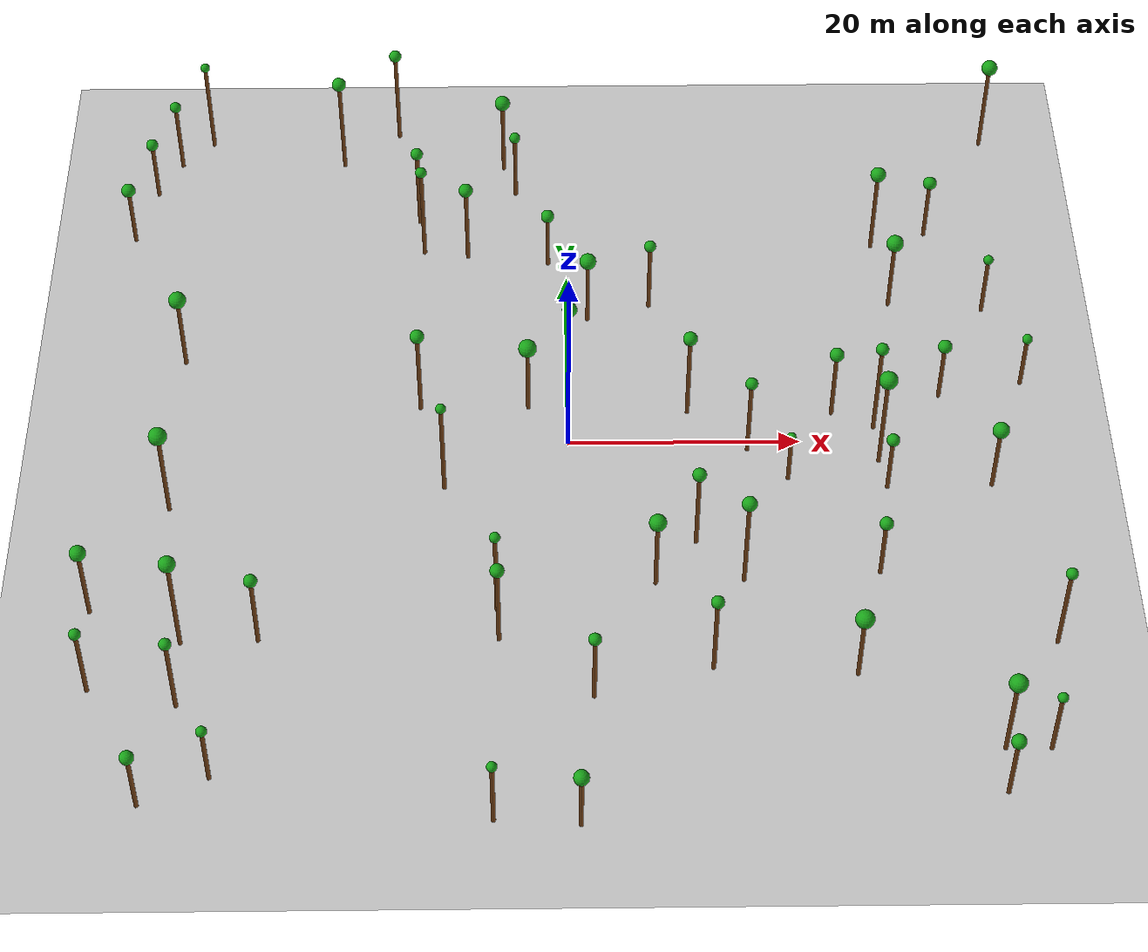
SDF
<sdf version="1.6">
 <world name="forest_world">
  <include><uri>model://sun</uri></include>
  <include><uri>model://ground_plane</uri></include>
  <model name="tree_229">
   <static>true</static>
   <link name="tree_link">
    <collision name="trunk_collision">
     <pose>18.78 -4.20 2.57 0 0 0</pose>
     <geometry><cylinder><radius>0.18</radius><length>5.14</length></cylinder></geometry>
    </collision>
    <visual name="trunk_visual">
     <pose>18.78 -4.20 2.57 0 0 0</pose>
     <geometry><cylinder><radius>0.18</radius><length>5.14</length></cylinder></geometry>
     <material><ambient>0.35 0.20 0.05 1</ambient><diffuse>0.45 0.25 0.08 1</diffuse></material>
    </visual>
    <visual name="leaf_visual">
     <pose>18.78 -4.20 5.35 0 0 0</pose>
     <geometry><sphere><radius>0.41</radius></sphere></geometry>
     <material><ambient>0.05 0.45 0.05 1</ambient><diffuse>0.10 0.65 0.10 1</diffuse></material>
    </visual>
   </link>
  </model>
  <model name="tree_230">
   <static>true</static>
   <link name="tree_link">
    <collision name="trunk_collision">
     <pose>11.48 -24.26 4.16 0 0 0</pose>
     <geometry><cylinder><radius>0.18</radius><length>8.33</length></cylinder></geometry>
    </collision>
    <visual name="trunk_visual">
     <pose>11.48 -24.26 4.16 0 0 0</pose>
     <geometry><cylinder><radius>0.18</radius><length>8.33</length></cylinder></geometry>
     <material><ambient>0.35 0.20 0.05 1</ambient><diffuse>0.45 0.25 0.08 1</diffuse></material>
    </visual>
    <visual name="leaf_visual">
     <pose>11.48 -24.26 8.60 0 0 0</pose>
     <geometry><sphere><radius>0.55</radius></sphere></geometry>
     <material><ambient>0.05 0.45 0.05 1</ambient><diffuse>0.10 0.65 0.10 1</diffuse></material>
    </visual>
   </link>
  </model>
  <model name="tree_231">
   <static>true</static>
   <link name="tree_link">
    <collision name="trunk_collision">
     <pose>-9.00 22.93 4.07 0 0 0</pose>
     <geometry><cylinder><radius>0.18</radius><length>8.13</length></cylinder></geometry>
    </collision>
    <visual name="trunk_visual">
     <pose>-9.00 22.93 4.07 0 0 0</pose>
     <geometry><cylinder><radius>0.18</radius><length>8.13</length></cylinder></geometry>
     <material><ambient>0.35 0.20 0.05 1</ambient><diffuse>0.45 0.25 0.08 1</diffuse></material>
    </visual>
    <visual name="leaf_visual">
     <pose>-9.00 22.93 8.45 0 0 0</pose>
     <geometry><sphere><radius>0.63</radius></sphere></geometry>
     <material><ambient>0.05 0.45 0.05 1</ambient><diffuse>0.10 0.65 0.10 1</diffuse></material>
    </visual>
   </link>
  </model>
  <model name="tree_232">
   <static>true</static>
   <link name="tree_link">
    <collision name="trunk_collision">
     <pose>-34.02 -37.08 3.11 0 0 0</pose>
     <geometry><cylinder><radius>0.18</radius><length>6.22</length></cylinder></geometry>
    </collision>
    <visual name="trunk_visual">
     <pose>-34.02 -37.08 3.11 0 0 0</pose>
     <geometry><cylinder><radius>0.18</radius><length>6.22</length></cylinder></geometry>
     <material><ambient>0.35 0.20 0.05 1</ambient><diffuse>0.45 0.25 0.08 1</diffuse></material>
    </visual>
    <visual name="leaf_visual">
     <pose>-34.02 -37.08 6.51 0 0 0</pose>
     <geometry><sphere><radius>0.58</radius></sphere></geometry>
     <material><ambient>0.05 0.45 0.05 1</ambient><diffuse>0.10 0.65 0.10 1</diffuse></material>
    </visual>
   </link>
  </model>
  <model name="tree_233">
   <static>true</static>
   <link name="tree_link">
    <collision name="trunk_collision">
     <pose>-25.56 -21.14 3.79 0 0 0</pose>
     <geometry><cylinder><radius>0.18</radius><length>7.57</length></cylinder></geometry>
    </collision>
    <visual name="trunk_visual">
     <pose>-25.56 -21.14 3.79 0 0 0</pose>
     <geometry><cylinder><radius>0.18</radius><length>7.57</length></cylinder></geometry>
     <material><ambient>0.35 0.20 0.05 1</ambient><diffuse>0.45 0.25 0.08 1</diffuse></material>
    </visual>
    <visual name="leaf_visual">
     <pose>-25.56 -21.14 7.85 0 0 0</pose>
     <geometry><sphere><radius>0.56</radius></sphere></geometry>
     <material><ambient>0.05 0.45 0.05 1</ambient><diffuse>0.10 0.65 0.10 1</diffuse></material>
    </visual>
   </link>
  </model>
  <model name="tree_234">
   <static>true</static>
   <link name="tree_link">
    <collision name="trunk_collision">
     <pose>-33.50 38.41 4.76 0 0 0</pose>
     <geometry><cylinder><radius>0.18</radius><length>9.52</length></cylinder></geometry>
    </collision>
    <visual name="trunk_visual">
     <pose>-33.50 38.41 4.76 0 0 0</pose>
     <geometry><cylinder><radius>0.18</radius><length>9.52</length></cylinder></geometry>
     <material><ambient>0.35 0.20 0.05 1</ambient><diffuse>0.45 0.25 0.08 1</diffuse></material>
    </visual>
    <visual name="leaf_visual">
     <pose>-33.50 38.41 9.73 0 0 0</pose>
     <geometry><sphere><radius>0.42</radius></sphere></geometry>
     <material><ambient>0.05 0.45 0.05 1</ambient><diffuse>0.10 0.65 0.10 1</diffuse></material>
    </visual>
   </link>
  </model>
  <model name="tree_235">
   <static>true</static>
   <link name="tree_link">
    <collision name="trunk_collision">
     <pose>-20.85 35.39 4.95 0 0 0</pose>
     <geometry><cylinder><radius>0.18</radius><length>9.90</length></cylinder></geometry>
    </collision>
    <visual name="trunk_visual">
     <pose>-20.85 35.39 4.95 0 0 0</pose>
     <geometry><cylinder><radius>0.18</radius><length>9.90</length></cylinder></geometry>
     <material><ambient>0.35 0.20 0.05 1</ambient><diffuse>0.45 0.25 0.08 1</diffuse></material>
    </visual>
    <visual name="leaf_visual">
     <pose>-20.85 35.39 10.21 0 0 0</pose>
     <geometry><sphere><radius>0.64</radius></sphere></geometry>
     <material><ambient>0.05 0.45 0.05 1</ambient><diffuse>0.10 0.65 0.10 1</diffuse></material>
    </visual>
   </link>
  </model>
  <model name="tree_236">
   <static>true</static>
   <link name="tree_link">
    <collision name="trunk_collision">
     <pose>-12.99 23.54 4.94 0 0 0</pose>
     <geometry><cylinder><radius>0.18</radius><length>9.88</length></cylinder></geometry>
    </collision>
    <visual name="trunk_visual">
     <pose>-12.99 23.54 4.94 0 0 0</pose>
     <geometry><cylinder><radius>0.18</radius><length>9.88</length></cylinder></geometry>
     <material><ambient>0.35 0.20 0.05 1</ambient><diffuse>0.45 0.25 0.08 1</diffuse></material>
    </visual>
    <visual name="leaf_visual">
     <pose>-12.99 23.54 10.13 0 0 0</pose>
     <geometry><sphere><radius>0.51</radius></sphere></geometry>
     <material><ambient>0.05 0.45 0.05 1</ambient><diffuse>0.10 0.65 0.10 1</diffuse></material>
    </visual>
   </link>
  </model>
  <model name="tree_237">
   <static>true</static>
   <link name="tree_link">
    <collision name="trunk_collision">
     <pose>-33.92 9.90 3.81 0 0 0</pose>
     <geometry><cylinder><radius>0.18</radius><length>7.62</length></cylinder></geometry>
    </collision>
    <visual name="trunk_visual">
     <pose>-33.92 9.90 3.81 0 0 0</pose>
     <geometry><cylinder><radius>0.18</radius><length>7.62</length></cylinder></geometry>
     <material><ambient>0.35 0.20 0.05 1</ambient><diffuse>0.45 0.25 0.08 1</diffuse></material>
    </visual>
    <visual name="leaf_visual">
     <pose>-33.92 9.90 8.00 0 0 0</pose>
     <geometry><sphere><radius>0.76</radius></sphere></geometry>
     <material><ambient>0.05 0.45 0.05 1</ambient><diffuse>0.10 0.65 0.10 1</diffuse></material>
    </visual>
   </link>
  </model>
  <model name="tree_238">
   <static>true</static>
   <link name="tree_link">
    <collision name="trunk_collision">
     <pose>39.75 37.72 4.64 0 0 0</pose>
     <geometry><cylinder><radius>0.18</radius><length>9.28</length></cylinder></geometry>
    </collision>
    <visual name="trunk_visual">
     <pose>39.75 37.72 4.64 0 0 0</pose>
     <geometry><cylinder><radius>0.18</radius><length>9.28</length></cylinder></geometry>
     <material><ambient>0.35 0.20 0.05 1</ambient><diffuse>0.45 0.25 0.08 1</diffuse></material>
    </visual>
    <visual name="leaf_visual">
     <pose>39.75 37.72 9.64 0 0 0</pose>
     <geometry><sphere><radius>0.72</radius></sphere></geometry>
     <material><ambient>0.05 0.45 0.05 1</ambient><diffuse>0.10 0.65 0.10 1</diffuse></material>
    </visual>
   </link>
  </model>
  <model name="tree_239">
   <static>true</static>
   <link name="tree_link">
    <collision name="trunk_collision">
     <pose>-39.03 -25.99 3.59 0 0 0</pose>
     <geometry><cylinder><radius>0.18</radius><length>7.18</length></cylinder></geometry>
    </collision>
    <visual name="trunk_visual">
     <pose>-39.03 -25.99 3.59 0 0 0</pose>
     <geometry><cylinder><radius>0.18</radius><length>7.18</length></cylinder></geometry>
     <material><ambient>0.35 0.20 0.05 1</ambient><diffuse>0.45 0.25 0.08 1</diffuse></material>
    </visual>
    <visual name="leaf_visual">
     <pose>-39.03 -25.99 7.43 0 0 0</pose>
     <geometry><sphere><radius>0.49</radius></sphere></geometry>
     <material><ambient>0.05 0.45 0.05 1</ambient><diffuse>0.10 0.65 0.10 1</diffuse></material>
    </visual>
   </link>
  </model>
  <model name="tree_240">
   <static>true</static>
   <link name="tree_link">
    <collision name="trunk_collision">
     <pose>-31.91 -21.33 4.98 0 0 0</pose>
     <geometry><cylinder><radius>0.18</radius><length>9.96</length></cylinder></geometry>
    </collision>
    <visual name="trunk_visual">
     <pose>-31.91 -21.33 4.98 0 0 0</pose>
     <geometry><cylinder><radius>0.18</radius><length>9.96</length></cylinder></geometry>
     <material><ambient>0.35 0.20 0.05 1</ambient><diffuse>0.45 0.25 0.08 1</diffuse></material>
    </visual>
    <visual name="leaf_visual">
     <pose>-31.91 -21.33 10.30 0 0 0</pose>
     <geometry><sphere><radius>0.70</radius></sphere></geometry>
     <material><ambient>0.05 0.45 0.05 1</ambient><diffuse>0.10 0.65 0.10 1</diffuse></material>
    </visual>
   </link>
  </model>
  <model name="tree_241">
   <static>true</static>
   <link name="tree_link">
    <collision name="trunk_collision">
     <pose>33.94 -36.53 3.24 0 0 0</pose>
     <geometry><cylinder><radius>0.18</radius><length>6.49</length></cylinder></geometry>
    </collision>
    <visual name="trunk_visual">
     <pose>33.94 -36.53 3.24 0 0 0</pose>
     <geometry><cylinder><radius>0.18</radius><length>6.49</length></cylinder></geometry>
     <material><ambient>0.35 0.20 0.05 1</ambient><diffuse>0.45 0.25 0.08 1</diffuse></material>
    </visual>
    <visual name="leaf_visual">
     <pose>33.94 -36.53 6.79 0 0 0</pose>
     <geometry><sphere><radius>0.61</radius></sphere></geometry>
     <material><ambient>0.05 0.45 0.05 1</ambient><diffuse>0.10 0.65 0.10 1</diffuse></material>
    </visual>
   </link>
  </model>
  <model name="tree_242">
   <static>true</static>
   <link name="tree_link">
    <collision name="trunk_collision">
     <pose>10.60 -11.14 4.19 0 0 0</pose>
     <geometry><cylinder><radius>0.18</radius><length>8.39</length></cylinder></geometry>
    </collision>
    <visual name="trunk_visual">
     <pose>10.60 -11.14 4.19 0 0 0</pose>
     <geometry><cylinder><radius>0.18</radius><length>8.39</length></cylinder></geometry>
     <material><ambient>0.35 0.20 0.05 1</ambient><diffuse>0.45 0.25 0.08 1</diffuse></material>
    </visual>
    <visual name="leaf_visual">
     <pose>10.60 -11.14 8.68 0 0 0</pose>
     <geometry><sphere><radius>0.59</radius></sphere></geometry>
     <material><ambient>0.05 0.45 0.05 1</ambient><diffuse>0.10 0.65 0.10 1</diffuse></material>
    </visual>
   </link>
  </model>
  <model name="tree_243">
   <static>true</static>
   <link name="tree_link">
    <collision name="trunk_collision">
     <pose>28.20 23.94 4.38 0 0 0</pose>
     <geometry><cylinder><radius>0.18</radius><length>8.75</length></cylinder></geometry>
    </collision>
    <visual name="trunk_visual">
     <pose>28.20 23.94 4.38 0 0 0</pose>
     <geometry><cylinder><radius>0.18</radius><length>8.75</length></cylinder></geometry>
     <material><ambient>0.35 0.20 0.05 1</ambient><diffuse>0.45 0.25 0.08 1</diffuse></material>
    </visual>
    <visual name="leaf_visual">
     <pose>28.20 23.94 9.09 0 0 0</pose>
     <geometry><sphere><radius>0.69</radius></sphere></geometry>
     <material><ambient>0.05 0.45 0.05 1</ambient><diffuse>0.10 0.65 0.10 1</diffuse></material>
    </visual>
   </link>
  </model>
  <model name="tree_244">
   <static>true</static>
   <link name="tree_link">
    <collision name="trunk_collision">
     <pose>15.45 -0.89 4.09 0 0 0</pose>
     <geometry><cylinder><radius>0.18</radius><length>8.17</length></cylinder></geometry>
    </collision>
    <visual name="trunk_visual">
     <pose>15.45 -0.89 4.09 0 0 0</pose>
     <geometry><cylinder><radius>0.18</radius><length>8.17</length></cylinder></geometry>
     <material><ambient>0.35 0.20 0.05 1</ambient><diffuse>0.45 0.25 0.08 1</diffuse></material>
    </visual>
    <visual name="leaf_visual">
     <pose>15.45 -0.89 8.44 0 0 0</pose>
     <geometry><sphere><radius>0.54</radius></sphere></geometry>
     <material><ambient>0.05 0.45 0.05 1</ambient><diffuse>0.10 0.65 0.10 1</diffuse></material>
    </visual>
   </link>
  </model>
  <model name="tree_245">
   <static>true</static>
   <link name="tree_link">
    <collision name="trunk_collision">
     <pose>-39.82 25.50 3.01 0 0 0</pose>
     <geometry><cylinder><radius>0.18</radius><length>6.03</length></cylinder></geometry>
    </collision>
    <visual name="trunk_visual">
     <pose>-39.82 25.50 3.01 0 0 0</pose>
     <geometry><cylinder><radius>0.18</radius><length>6.03</length></cylinder></geometry>
     <material><ambient>0.35 0.20 0.05 1</ambient><diffuse>0.45 0.25 0.08 1</diffuse></material>
    </visual>
    <visual name="leaf_visual">
     <pose>-39.82 25.50 6.34 0 0 0</pose>
     <geometry><sphere><radius>0.63</radius></sphere></geometry>
     <material><ambient>0.05 0.45 0.05 1</ambient><diffuse>0.10 0.65 0.10 1</diffuse></material>
    </visual>
   </link>
  </model>
  <model name="tree_246">
   <static>true</static>
   <link name="tree_link">
    <collision name="trunk_collision">
     <pose>34.18 -32.40 4.12 0 0 0</pose>
     <geometry><cylinder><radius>0.18</radius><length>8.24</length></cylinder></geometry>
    </collision>
    <visual name="trunk_visual">
     <pose>34.18 -32.40 4.12 0 0 0</pose>
     <geometry><cylinder><radius>0.18</radius><length>8.24</length></cylinder></geometry>
     <material><ambient>0.35 0.20 0.05 1</ambient><diffuse>0.45 0.25 0.08 1</diffuse></material>
    </visual>
    <visual name="leaf_visual">
     <pose>34.18 -32.40 8.62 0 0 0</pose>
     <geometry><sphere><radius>0.76</radius></sphere></geometry>
     <material><ambient>0.05 0.45 0.05 1</ambient><diffuse>0.10 0.65 0.10 1</diffuse></material>
    </visual>
   </link>
  </model>
  <model name="tree_247">
   <static>true</static>
   <link name="tree_link">
    <collision name="trunk_collision">
     <pose>39.65 -21.96 4.33 0 0 0</pose>
     <geometry><cylinder><radius>0.18</radius><length>8.66</length></cylinder></geometry>
    </collision>
    <visual name="trunk_visual">
     <pose>39.65 -21.96 4.33 0 0 0</pose>
     <geometry><cylinder><radius>0.18</radius><length>8.66</length></cylinder></geometry>
     <material><ambient>0.35 0.20 0.05 1</ambient><diffuse>0.45 0.25 0.08 1</diffuse></material>
    </visual>
    <visual name="leaf_visual">
     <pose>39.65 -21.96 8.91 0 0 0</pose>
     <geometry><sphere><radius>0.50</radius></sphere></geometry>
     <material><ambient>0.05 0.45 0.05 1</ambient><diffuse>0.10 0.65 0.10 1</diffuse></material>
    </visual>
   </link>
  </model>
  <model name="tree_248">
   <static>true</static>
   <link name="tree_link">
    <collision name="trunk_collision">
     <pose>-1.65 22.01 2.88 0 0 0</pose>
     <geometry><cylinder><radius>0.18</radius><length>5.77</length></cylinder></geometry>
    </collision>
    <visual name="trunk_visual">
     <pose>-1.65 22.01 2.88 0 0 0</pose>
     <geometry><cylinder><radius>0.18</radius><length>5.77</length></cylinder></geometry>
     <material><ambient>0.35 0.20 0.05 1</ambient><diffuse>0.45 0.25 0.08 1</diffuse></material>
    </visual>
    <visual name="leaf_visual">
     <pose>-1.65 22.01 6.06 0 0 0</pose>
     <geometry><sphere><radius>0.59</radius></sphere></geometry>
     <material><ambient>0.05 0.45 0.05 1</ambient><diffuse>0.10 0.65 0.10 1</diffuse></material>
    </visual>
   </link>
  </model>
  <model name="tree_249">
   <static>true</static>
   <link name="tree_link">
    <collision name="trunk_collision">
     <pose>-15.77 39.41 4.92 0 0 0</pose>
     <geometry><cylinder><radius>0.18</radius><length>9.84</length></cylinder></geometry>
    </collision>
    <visual name="trunk_visual">
     <pose>-15.77 39.41 4.92 0 0 0</pose>
     <geometry><cylinder><radius>0.18</radius><length>9.84</length></cylinder></geometry>
     <material><ambient>0.35 0.20 0.05 1</ambient><diffuse>0.45 0.25 0.08 1</diffuse></material>
    </visual>
    <visual name="leaf_visual">
     <pose>-15.77 39.41 10.12 0 0 0</pose>
     <geometry><sphere><radius>0.56</radius></sphere></geometry>
     <material><ambient>0.05 0.45 0.05 1</ambient><diffuse>0.10 0.65 0.10 1</diffuse></material>
    </visual>
   </link>
  </model>
  <model name="tree_250">
   <static>true</static>
   <link name="tree_link">
    <collision name="trunk_collision">
     <pose>26.72 -2.30 4.94 0 0 0</pose>
     <geometry><cylinder><radius>0.18</radius><length>9.89</length></cylinder></geometry>
    </collision>
    <visual name="trunk_visual">
     <pose>26.72 -2.30 4.94 0 0 0</pose>
     <geometry><cylinder><radius>0.18</radius><length>9.89</length></cylinder></geometry>
     <material><ambient>0.35 0.20 0.05 1</ambient><diffuse>0.45 0.25 0.08 1</diffuse></material>
    </visual>
    <visual name="leaf_visual">
     <pose>26.72 -2.30 10.28 0 0 0</pose>
     <geometry><sphere><radius>0.79</radius></sphere></geometry>
     <material><ambient>0.05 0.45 0.05 1</ambient><diffuse>0.10 0.65 0.10 1</diffuse></material>
    </visual>
   </link>
  </model>
  <model name="tree_251">
   <static>true</static>
   <link name="tree_link">
    <collision name="trunk_collision">
     <pose>-39.63 -18.04 3.67 0 0 0</pose>
     <geometry><cylinder><radius>0.18</radius><length>7.34</length></cylinder></geometry>
    </collision>
    <visual name="trunk_visual">
     <pose>-39.63 -18.04 3.67 0 0 0</pose>
     <geometry><cylinder><radius>0.18</radius><length>7.34</length></cylinder></geometry>
     <material><ambient>0.35 0.20 0.05 1</ambient><diffuse>0.45 0.25 0.08 1</diffuse></material>
    </visual>
    <visual name="leaf_visual">
     <pose>-39.63 -18.04 7.68 0 0 0</pose>
     <geometry><sphere><radius>0.68</radius></sphere></geometry>
     <material><ambient>0.05 0.45 0.05 1</ambient><diffuse>0.10 0.65 0.10 1</diffuse></material>
    </visual>
   </link>
  </model>
  <model name="tree_252">
   <static>true</static>
   <link name="tree_link">
    <collision name="trunk_collision">
     <pose>23.03 3.26 3.59 0 0 0</pose>
     <geometry><cylinder><radius>0.18</radius><length>7.18</length></cylinder></geometry>
    </collision>
    <visual name="trunk_visual">
     <pose>23.03 3.26 3.59 0 0 0</pose>
     <geometry><cylinder><radius>0.18</radius><length>7.18</length></cylinder></geometry>
     <material><ambient>0.35 0.20 0.05 1</ambient><diffuse>0.45 0.25 0.08 1</diffuse></material>
    </visual>
    <visual name="leaf_visual">
     <pose>23.03 3.26 7.49 0 0 0</pose>
     <geometry><sphere><radius>0.62</radius></sphere></geometry>
     <material><ambient>0.05 0.45 0.05 1</ambient><diffuse>0.10 0.65 0.10 1</diffuse></material>
    </visual>
   </link>
  </model>
  <model name="tree_253">
   <static>true</static>
   <link name="tree_link">
    <collision name="trunk_collision">
     <pose>-5.75 34.83 3.96 0 0 0</pose>
     <geometry><cylinder><radius>0.18</radius><length>7.91</length></cylinder></geometry>
    </collision>
    <visual name="trunk_visual">
     <pose>-5.75 34.83 3.96 0 0 0</pose>
     <geometry><cylinder><radius>0.18</radius><length>7.91</length></cylinder></geometry>
     <material><ambient>0.35 0.20 0.05 1</ambient><diffuse>0.45 0.25 0.08 1</diffuse></material>
    </visual>
    <visual name="leaf_visual">
     <pose>-5.75 34.83 8.26 0 0 0</pose>
     <geometry><sphere><radius>0.70</radius></sphere></geometry>
     <material><ambient>0.05 0.45 0.05 1</ambient><diffuse>0.10 0.65 0.10 1</diffuse></material>
    </visual>
   </link>
  </model>
  <model name="tree_254">
   <static>true</static>
   <link name="tree_link">
    <collision name="trunk_collision">
     <pose>-6.25 -38.71 3.51 0 0 0</pose>
     <geometry><cylinder><radius>0.18</radius><length>7.02</length></cylinder></geometry>
    </collision>
    <visual name="trunk_visual">
     <pose>-6.25 -38.71 3.51 0 0 0</pose>
     <geometry><cylinder><radius>0.18</radius><length>7.02</length></cylinder></geometry>
     <material><ambient>0.35 0.20 0.05 1</ambient><diffuse>0.45 0.25 0.08 1</diffuse></material>
    </visual>
    <visual name="leaf_visual">
     <pose>-6.25 -38.71 7.24 0 0 0</pose>
     <geometry><sphere><radius>0.43</radius></sphere></geometry>
     <material><ambient>0.05 0.45 0.05 1</ambient><diffuse>0.10 0.65 0.10 1</diffuse></material>
    </visual>
   </link>
  </model>
  <model name="tree_255">
   <static>true</static>
   <link name="tree_link">
    <collision name="trunk_collision">
     <pose>-38.20 31.55 3.04 0 0 0</pose>
     <geometry><cylinder><radius>0.18</radius><length>6.08</length></cylinder></geometry>
    </collision>
    <visual name="trunk_visual">
     <pose>-38.20 31.55 3.04 0 0 0</pose>
     <geometry><cylinder><radius>0.18</radius><length>6.08</length></cylinder></geometry>
     <material><ambient>0.35 0.20 0.05 1</ambient><diffuse>0.45 0.25 0.08 1</diffuse></material>
    </visual>
    <visual name="leaf_visual">
     <pose>-38.20 31.55 6.36 0 0 0</pose>
     <geometry><sphere><radius>0.55</radius></sphere></geometry>
     <material><ambient>0.05 0.45 0.05 1</ambient><diffuse>0.10 0.65 0.10 1</diffuse></material>
    </visual>
   </link>
  </model>
  <model name="tree_256">
   <static>true</static>
   <link name="tree_link">
    <collision name="trunk_collision">
     <pose>27.21 -5.27 2.90 0 0 0</pose>
     <geometry><cylinder><radius>0.18</radius><length>5.80</length></cylinder></geometry>
    </collision>
    <visual name="trunk_visual">
     <pose>27.21 -5.27 2.90 0 0 0</pose>
     <geometry><cylinder><radius>0.18</radius><length>5.80</length></cylinder></geometry>
     <material><ambient>0.35 0.20 0.05 1</ambient><diffuse>0.45 0.25 0.08 1</diffuse></material>
    </visual>
    <visual name="leaf_visual">
     <pose>27.21 -5.27 6.08 0 0 0</pose>
     <geometry><sphere><radius>0.56</radius></sphere></geometry>
     <material><ambient>0.05 0.45 0.05 1</ambient><diffuse>0.10 0.65 0.10 1</diffuse></material>
    </visual>
   </link>
  </model>
  <model name="tree_257">
   <static>true</static>
   <link name="tree_link">
    <collision name="trunk_collision">
     <pose>-12.90 4.24 4.41 0 0 0</pose>
     <geometry><cylinder><radius>0.18</radius><length>8.82</length></cylinder></geometry>
    </collision>
    <visual name="trunk_visual">
     <pose>-12.90 4.24 4.41 0 0 0</pose>
     <geometry><cylinder><radius>0.18</radius><length>8.82</length></cylinder></geometry>
     <material><ambient>0.35 0.20 0.05 1</ambient><diffuse>0.45 0.25 0.08 1</diffuse></material>
    </visual>
    <visual name="leaf_visual">
     <pose>-12.90 4.24 9.12 0 0 0</pose>
     <geometry><sphere><radius>0.61</radius></sphere></geometry>
     <material><ambient>0.05 0.45 0.05 1</ambient><diffuse>0.10 0.65 0.10 1</diffuse></material>
    </visual>
   </link>
  </model>
  <model name="tree_258">
   <static>true</static>
   <link name="tree_link">
    <collision name="trunk_collision">
     <pose>36.19 -5.10 3.33 0 0 0</pose>
     <geometry><cylinder><radius>0.18</radius><length>6.66</length></cylinder></geometry>
    </collision>
    <visual name="trunk_visual">
     <pose>36.19 -5.10 3.33 0 0 0</pose>
     <geometry><cylinder><radius>0.18</radius><length>6.66</length></cylinder></geometry>
     <material><ambient>0.35 0.20 0.05 1</ambient><diffuse>0.45 0.25 0.08 1</diffuse></material>
    </visual>
    <visual name="leaf_visual">
     <pose>36.19 -5.10 7.02 0 0 0</pose>
     <geometry><sphere><radius>0.72</radius></sphere></geometry>
     <material><ambient>0.05 0.45 0.05 1</ambient><diffuse>0.10 0.65 0.10 1</diffuse></material>
    </visual>
   </link>
  </model>
  <model name="tree_259">
   <static>true</static>
   <link name="tree_link">
    <collision name="trunk_collision">
     <pose>32.62 5.21 3.00 0 0 0</pose>
     <geometry><cylinder><radius>0.18</radius><length>6.01</length></cylinder></geometry>
    </collision>
    <visual name="trunk_visual">
     <pose>32.62 5.21 3.00 0 0 0</pose>
     <geometry><cylinder><radius>0.18</radius><length>6.01</length></cylinder></geometry>
     <material><ambient>0.35 0.20 0.05 1</ambient><diffuse>0.45 0.25 0.08 1</diffuse></material>
    </visual>
    <visual name="leaf_visual">
     <pose>32.62 5.21 6.32 0 0 0</pose>
     <geometry><sphere><radius>0.61</radius></sphere></geometry>
     <material><ambient>0.05 0.45 0.05 1</ambient><diffuse>0.10 0.65 0.10 1</diffuse></material>
    </visual>
   </link>
  </model>
  <model name="tree_260">
   <static>true</static>
   <link name="tree_link">
    <collision name="trunk_collision">
     <pose>14.42 -15.27 4.77 0 0 0</pose>
     <geometry><cylinder><radius>0.18</radius><length>9.54</length></cylinder></geometry>
    </collision>
    <visual name="trunk_visual">
     <pose>14.42 -15.27 4.77 0 0 0</pose>
     <geometry><cylinder><radius>0.18</radius><length>9.54</length></cylinder></geometry>
     <material><ambient>0.35 0.20 0.05 1</ambient><diffuse>0.45 0.25 0.08 1</diffuse></material>
    </visual>
    <visual name="leaf_visual">
     <pose>14.42 -15.27 9.86 0 0 0</pose>
     <geometry><sphere><radius>0.64</radius></sphere></geometry>
     <material><ambient>0.05 0.45 0.05 1</ambient><diffuse>0.10 0.65 0.10 1</diffuse></material>
    </visual>
   </link>
  </model>
  <model name="tree_261">
   <static>true</static>
   <link name="tree_link">
    <collision name="trunk_collision">
     <pose>-4.61 31.27 3.46 0 0 0</pose>
     <geometry><cylinder><radius>0.18</radius><length>6.92</length></cylinder></geometry>
    </collision>
    <visual name="trunk_visual">
     <pose>-4.61 31.27 3.46 0 0 0</pose>
     <geometry><cylinder><radius>0.18</radius><length>6.92</length></cylinder></geometry>
     <material><ambient>0.35 0.20 0.05 1</ambient><diffuse>0.45 0.25 0.08 1</diffuse></material>
    </visual>
    <visual name="leaf_visual">
     <pose>-4.61 31.27 7.17 0 0 0</pose>
     <geometry><sphere><radius>0.50</radius></sphere></geometry>
     <material><ambient>0.05 0.45 0.05 1</ambient><diffuse>0.10 0.65 0.10 1</diffuse></material>
    </visual>
   </link>
  </model>
  <model name="tree_262">
   <static>true</static>
   <link name="tree_link">
    <collision name="trunk_collision">
     <pose>37.55 15.68 3.08 0 0 0</pose>
     <geometry><cylinder><radius>0.18</radius><length>6.17</length></cylinder></geometry>
    </collision>
    <visual name="trunk_visual">
     <pose>37.55 15.68 3.08 0 0 0</pose>
     <geometry><cylinder><radius>0.18</radius><length>6.17</length></cylinder></geometry>
     <material><ambient>0.35 0.20 0.05 1</ambient><diffuse>0.45 0.25 0.08 1</diffuse></material>
    </visual>
    <visual name="leaf_visual">
     <pose>37.55 15.68 6.39 0 0 0</pose>
     <geometry><sphere><radius>0.44</radius></sphere></geometry>
     <material><ambient>0.05 0.45 0.05 1</ambient><diffuse>0.10 0.65 0.10 1</diffuse></material>
    </visual>
   </link>
  </model>
  <model name="tree_263">
   <static>true</static>
   <link name="tree_link">
    <collision name="trunk_collision">
     <pose>-5.92 -21.22 4.35 0 0 0</pose>
     <geometry><cylinder><radius>0.18</radius><length>8.69</length></cylinder></geometry>
    </collision>
    <visual name="trunk_visual">
     <pose>-5.92 -21.22 4.35 0 0 0</pose>
     <geometry><cylinder><radius>0.18</radius><length>8.69</length></cylinder></geometry>
     <material><ambient>0.35 0.20 0.05 1</ambient><diffuse>0.45 0.25 0.08 1</diffuse></material>
    </visual>
    <visual name="leaf_visual">
     <pose>-5.92 -21.22 8.99 0 0 0</pose>
     <geometry><sphere><radius>0.60</radius></sphere></geometry>
     <material><ambient>0.05 0.45 0.05 1</ambient><diffuse>0.10 0.65 0.10 1</diffuse></material>
    </visual>
   </link>
  </model>
  <model name="tree_264">
   <static>true</static>
   <link name="tree_link">
    <collision name="trunk_collision">
     <pose>-31.74 -27.60 3.96 0 0 0</pose>
     <geometry><cylinder><radius>0.18</radius><length>7.91</length></cylinder></geometry>
    </collision>
    <visual name="trunk_visual">
     <pose>-31.74 -27.60 3.96 0 0 0</pose>
     <geometry><cylinder><radius>0.18</radius><length>7.91</length></cylinder></geometry>
     <material><ambient>0.35 0.20 0.05 1</ambient><diffuse>0.45 0.25 0.08 1</diffuse></material>
    </visual>
    <visual name="leaf_visual">
     <pose>-31.74 -27.60 8.17 0 0 0</pose>
     <geometry><sphere><radius>0.51</radius></sphere></geometry>
     <material><ambient>0.05 0.45 0.05 1</ambient><diffuse>0.10 0.65 0.10 1</diffuse></material>
    </visual>
   </link>
  </model>
  <model name="tree_265">
   <static>true</static>
   <link name="tree_link">
    <collision name="trunk_collision">
     <pose>7.44 16.49 3.66 0 0 0</pose>
     <geometry><cylinder><radius>0.18</radius><length>7.32</length></cylinder></geometry>
    </collision>
    <visual name="trunk_visual">
     <pose>7.44 16.49 3.66 0 0 0</pose>
     <geometry><cylinder><radius>0.18</radius><length>7.32</length></cylinder></geometry>
     <material><ambient>0.35 0.20 0.05 1</ambient><diffuse>0.45 0.25 0.08 1</diffuse></material>
    </visual>
    <visual name="leaf_visual">
     <pose>7.44 16.49 7.59 0 0 0</pose>
     <geometry><sphere><radius>0.53</radius></sphere></geometry>
     <material><ambient>0.05 0.45 0.05 1</ambient><diffuse>0.10 0.65 0.10 1</diffuse></material>
    </visual>
   </link>
  </model>
  <model name="tree_266">
   <static>true</static>
   <link name="tree_link">
    <collision name="trunk_collision">
     <pose>7.06 -15.51 3.75 0 0 0</pose>
     <geometry><cylinder><radius>0.18</radius><length>7.49</length></cylinder></geometry>
    </collision>
    <visual name="trunk_visual">
     <pose>7.06 -15.51 3.75 0 0 0</pose>
     <geometry><cylinder><radius>0.18</radius><length>7.49</length></cylinder></geometry>
     <material><ambient>0.35 0.20 0.05 1</ambient><diffuse>0.45 0.25 0.08 1</diffuse></material>
    </visual>
    <visual name="leaf_visual">
     <pose>7.06 -15.51 7.86 0 0 0</pose>
     <geometry><sphere><radius>0.73</radius></sphere></geometry>
     <material><ambient>0.05 0.45 0.05 1</ambient><diffuse>0.10 0.65 0.10 1</diffuse></material>
    </visual>
   </link>
  </model>
  <model name="tree_267">
   <static>true</static>
   <link name="tree_link">
    <collision name="trunk_collision">
     <pose>1.88 14.88 3.51 0 0 0</pose>
     <geometry><cylinder><radius>0.18</radius><length>7.03</length></cylinder></geometry>
    </collision>
    <visual name="trunk_visual">
     <pose>1.88 14.88 3.51 0 0 0</pose>
     <geometry><cylinder><radius>0.18</radius><length>7.03</length></cylinder></geometry>
     <material><ambient>0.35 0.20 0.05 1</ambient><diffuse>0.45 0.25 0.08 1</diffuse></material>
    </visual>
    <visual name="leaf_visual">
     <pose>1.88 14.88 7.39 0 0 0</pose>
     <geometry><sphere><radius>0.73</radius></sphere></geometry>
     <material><ambient>0.05 0.45 0.05 1</ambient><diffuse>0.10 0.65 0.10 1</diffuse></material>
    </visual>
   </link>
  </model>
  <model name="tree_268">
   <static>true</static>
   <link name="tree_link">
    <collision name="trunk_collision">
     <pose>-3.48 4.18 3.61 0 0 0</pose>
     <geometry><cylinder><radius>0.18</radius><length>7.23</length></cylinder></geometry>
    </collision>
    <visual name="trunk_visual">
     <pose>-3.48 4.18 3.61 0 0 0</pose>
     <geometry><cylinder><radius>0.18</radius><length>7.23</length></cylinder></geometry>
     <material><ambient>0.35 0.20 0.05 1</ambient><diffuse>0.45 0.25 0.08 1</diffuse></material>
    </visual>
    <visual name="leaf_visual">
     <pose>-3.48 4.18 7.62 0 0 0</pose>
     <geometry><sphere><radius>0.79</radius></sphere></geometry>
     <material><ambient>0.05 0.45 0.05 1</ambient><diffuse>0.10 0.65 0.10 1</diffuse></material>
    </visual>
   </link>
  </model>
  <model name="tree_269">
   <static>true</static>
   <link name="tree_link">
    <collision name="trunk_collision">
     <pose>-10.67 -4.96 4.95 0 0 0</pose>
     <geometry><cylinder><radius>0.18</radius><length>9.90</length></cylinder></geometry>
    </collision>
    <visual name="trunk_visual">
     <pose>-10.67 -4.96 4.95 0 0 0</pose>
     <geometry><cylinder><radius>0.18</radius><length>9.90</length></cylinder></geometry>
     <material><ambient>0.35 0.20 0.05 1</ambient><diffuse>0.45 0.25 0.08 1</diffuse></material>
    </visual>
    <visual name="leaf_visual">
     <pose>-10.67 -4.96 10.12 0 0 0</pose>
     <geometry><sphere><radius>0.44</radius></sphere></geometry>
     <material><ambient>0.05 0.45 0.05 1</ambient><diffuse>0.10 0.65 0.10 1</diffuse></material>
    </visual>
   </link>
  </model>
  <model name="tree_270">
   <static>true</static>
   <link name="tree_link">
    <collision name="trunk_collision">
     <pose>-36.26 35.53 3.58 0 0 0</pose>
     <geometry><cylinder><radius>0.18</radius><length>7.17</length></cylinder></geometry>
    </collision>
    <visual name="trunk_visual">
     <pose>-36.26 35.53 3.58 0 0 0</pose>
     <geometry><cylinder><radius>0.18</radius><length>7.17</length></cylinder></geometry>
     <material><ambient>0.35 0.20 0.05 1</ambient><diffuse>0.45 0.25 0.08 1</diffuse></material>
    </visual>
    <visual name="leaf_visual">
     <pose>-36.26 35.53 7.42 0 0 0</pose>
     <geometry><sphere><radius>0.51</radius></sphere></geometry>
     <material><ambient>0.05 0.45 0.05 1</ambient><diffuse>0.10 0.65 0.10 1</diffuse></material>
    </visual>
   </link>
  </model>
  <model name="tree_271">
   <static>true</static>
   <link name="tree_link">
    <collision name="trunk_collision">
     <pose>29.17 16.45 3.70 0 0 0</pose>
     <geometry><cylinder><radius>0.18</radius><length>7.40</length></cylinder></geometry>
    </collision>
    <visual name="trunk_visual">
     <pose>29.17 16.45 3.70 0 0 0</pose>
     <geometry><cylinder><radius>0.18</radius><length>7.40</length></cylinder></geometry>
     <material><ambient>0.35 0.20 0.05 1</ambient><diffuse>0.45 0.25 0.08 1</diffuse></material>
    </visual>
    <visual name="leaf_visual">
     <pose>29.17 16.45 7.78 0 0 0</pose>
     <geometry><sphere><radius>0.76</radius></sphere></geometry>
     <material><ambient>0.05 0.45 0.05 1</ambient><diffuse>0.10 0.65 0.10 1</diffuse></material>
    </visual>
   </link>
  </model>
  <model name="tree_272">
   <static>true</static>
   <link name="tree_link">
    <collision name="trunk_collision">
     <pose>25.81 -14.55 3.03 0 0 0</pose>
     <geometry><cylinder><radius>0.18</radius><length>6.07</length></cylinder></geometry>
    </collision>
    <visual name="trunk_visual">
     <pose>25.81 -14.55 3.03 0 0 0</pose>
     <geometry><cylinder><radius>0.18</radius><length>6.07</length></cylinder></geometry>
     <material><ambient>0.35 0.20 0.05 1</ambient><diffuse>0.45 0.25 0.08 1</diffuse></material>
    </visual>
    <visual name="leaf_visual">
     <pose>25.81 -14.55 6.36 0 0 0</pose>
     <geometry><sphere><radius>0.58</radius></sphere></geometry>
     <material><ambient>0.05 0.45 0.05 1</ambient><diffuse>0.10 0.65 0.10 1</diffuse></material>
    </visual>
   </link>
  </model>
  <model name="tree_273">
   <static>true</static>
   <link name="tree_link">
    <collision name="trunk_collision">
     <pose>10.42 3.55 4.51 0 0 0</pose>
     <geometry><cylinder><radius>0.18</radius><length>9.02</length></cylinder></geometry>
    </collision>
    <visual name="trunk_visual">
     <pose>10.42 3.55 4.51 0 0 0</pose>
     <geometry><cylinder><radius>0.18</radius><length>9.02</length></cylinder></geometry>
     <material><ambient>0.35 0.20 0.05 1</ambient><diffuse>0.45 0.25 0.08 1</diffuse></material>
    </visual>
    <visual name="leaf_visual">
     <pose>10.42 3.55 9.33 0 0 0</pose>
     <geometry><sphere><radius>0.62</radius></sphere></geometry>
     <material><ambient>0.05 0.45 0.05 1</ambient><diffuse>0.10 0.65 0.10 1</diffuse></material>
    </visual>
   </link>
  </model>
  <model name="tree_274">
   <static>true</static>
   <link name="tree_link">
    <collision name="trunk_collision">
     <pose>39.99 6.66 2.71 0 0 0</pose>
     <geometry><cylinder><radius>0.18</radius><length>5.42</length></cylinder></geometry>
    </collision>
    <visual name="trunk_visual">
     <pose>39.99 6.66 2.71 0 0 0</pose>
     <geometry><cylinder><radius>0.18</radius><length>5.42</length></cylinder></geometry>
     <material><ambient>0.35 0.20 0.05 1</ambient><diffuse>0.45 0.25 0.08 1</diffuse></material>
    </visual>
    <visual name="leaf_visual">
     <pose>39.99 6.66 5.65 0 0 0</pose>
     <geometry><sphere><radius>0.45</radius></sphere></geometry>
     <material><ambient>0.05 0.45 0.05 1</ambient><diffuse>0.10 0.65 0.10 1</diffuse></material>
    </visual>
   </link>
  </model>
  <model name="tree_275">
   <static>true</static>
   <link name="tree_link">
    <collision name="trunk_collision">
     <pose>0.18 8.25 3.89 0 0 0</pose>
     <geometry><cylinder><radius>0.18</radius><length>7.78</length></cylinder></geometry>
    </collision>
    <visual name="trunk_visual">
     <pose>0.18 8.25 3.89 0 0 0</pose>
     <geometry><cylinder><radius>0.18</radius><length>7.78</length></cylinder></geometry>
     <material><ambient>0.35 0.20 0.05 1</ambient><diffuse>0.45 0.25 0.08 1</diffuse></material>
    </visual>
    <visual name="leaf_visual">
     <pose>0.18 8.25 8.12 0 0 0</pose>
     <geometry><sphere><radius>0.67</radius></sphere></geometry>
     <material><ambient>0.05 0.45 0.05 1</ambient><diffuse>0.10 0.65 0.10 1</diffuse></material>
    </visual>
   </link>
  </model>
  <model name="tree_276">
   <static>true</static>
   <link name="tree_link">
    <collision name="trunk_collision">
     <pose>26.57 1.56 4.84 0 0 0</pose>
     <geometry><cylinder><radius>0.18</radius><length>9.68</length></cylinder></geometry>
    </collision>
    <visual name="trunk_visual">
     <pose>26.57 1.56 4.84 0 0 0</pose>
     <geometry><cylinder><radius>0.18</radius><length>9.68</length></cylinder></geometry>
     <material><ambient>0.35 0.20 0.05 1</ambient><diffuse>0.45 0.25 0.08 1</diffuse></material>
    </visual>
    <visual name="leaf_visual">
     <pose>26.57 1.56 9.95 0 0 0</pose>
     <geometry><sphere><radius>0.55</radius></sphere></geometry>
     <material><ambient>0.05 0.45 0.05 1</ambient><diffuse>0.10 0.65 0.10 1</diffuse></material>
    </visual>
   </link>
  </model>
  <model name="tree_277">
   <static>true</static>
   <link name="tree_link">
    <collision name="trunk_collision">
     <pose>1.77 -26.99 3.63 0 0 0</pose>
     <geometry><cylinder><radius>0.18</radius><length>7.27</length></cylinder></geometry>
    </collision>
    <visual name="trunk_visual">
     <pose>1.77 -26.99 3.63 0 0 0</pose>
     <geometry><cylinder><radius>0.18</radius><length>7.27</length></cylinder></geometry>
     <material><ambient>0.35 0.20 0.05 1</ambient><diffuse>0.45 0.25 0.08 1</diffuse></material>
    </visual>
    <visual name="leaf_visual">
     <pose>1.77 -26.99 7.53 0 0 0</pose>
     <geometry><sphere><radius>0.53</radius></sphere></geometry>
     <material><ambient>0.05 0.45 0.05 1</ambient><diffuse>0.10 0.65 0.10 1</diffuse></material>
    </visual>
   </link>
  </model>
  <model name="tree_278">
   <static>true</static>
   <link name="tree_link">
    <collision name="trunk_collision">
     <pose>0.54 -39.19 3.04 0 0 0</pose>
     <geometry><cylinder><radius>0.18</radius><length>6.07</length></cylinder></geometry>
    </collision>
    <visual name="trunk_visual">
     <pose>0.54 -39.19 3.04 0 0 0</pose>
     <geometry><cylinder><radius>0.18</radius><length>6.07</length></cylinder></geometry>
     <material><ambient>0.35 0.20 0.05 1</ambient><diffuse>0.45 0.25 0.08 1</diffuse></material>
    </visual>
    <visual name="leaf_visual">
     <pose>0.54 -39.19 6.39 0 0 0</pose>
     <geometry><sphere><radius>0.64</radius></sphere></geometry>
     <material><ambient>0.05 0.45 0.05 1</ambient><diffuse>0.10 0.65 0.10 1</diffuse></material>
    </visual>
   </link>
  </model>
  <model name="tree_279">
   <static>true</static>
   <link name="tree_link">
    <collision name="trunk_collision">
     <pose>33.26 25.44 3.13 0 0 0</pose>
     <geometry><cylinder><radius>0.18</radius><length>6.26</length></cylinder></geometry>
    </collision>
    <visual name="trunk_visual">
     <pose>33.26 25.44 3.13 0 0 0</pose>
     <geometry><cylinder><radius>0.18</radius><length>6.26</length></cylinder></geometry>
     <material><ambient>0.35 0.20 0.05 1</ambient><diffuse>0.45 0.25 0.08 1</diffuse></material>
    </visual>
    <visual name="leaf_visual">
     <pose>33.26 25.44 6.56 0 0 0</pose>
     <geometry><sphere><radius>0.60</radius></sphere></geometry>
     <material><ambient>0.05 0.45 0.05 1</ambient><diffuse>0.10 0.65 0.10 1</diffuse></material>
    </visual>
   </link>
  </model>
  <model name="tree_280">
   <static>true</static>
   <link name="tree_link">
    <collision name="trunk_collision">
     <pose>-28.57 -34.55 3.03 0 0 0</pose>
     <geometry><cylinder><radius>0.18</radius><length>6.06</length></cylinder></geometry>
    </collision>
    <visual name="trunk_visual">
     <pose>-28.57 -34.55 3.03 0 0 0</pose>
     <geometry><cylinder><radius>0.18</radius><length>6.06</length></cylinder></geometry>
     <material><ambient>0.35 0.20 0.05 1</ambient><diffuse>0.45 0.25 0.08 1</diffuse></material>
    </visual>
    <visual name="leaf_visual">
     <pose>-28.57 -34.55 6.28 0 0 0</pose>
     <geometry><sphere><radius>0.45</radius></sphere></geometry>
     <material><ambient>0.05 0.45 0.05 1</ambient><diffuse>0.10 0.65 0.10 1</diffuse></material>
    </visual>
   </link>
  </model>
  <model name="tree_281">
   <static>true</static>
   <link name="tree_link">
    <collision name="trunk_collision">
     <pose>-13.52 27.59 4.18 0 0 0</pose>
     <geometry><cylinder><radius>0.18</radius><length>8.37</length></cylinder></geometry>
    </collision>
    <visual name="trunk_visual">
     <pose>-13.52 27.59 4.18 0 0 0</pose>
     <geometry><cylinder><radius>0.18</radius><length>8.37</length></cylinder></geometry>
     <material><ambient>0.35 0.20 0.05 1</ambient><diffuse>0.45 0.25 0.08 1</diffuse></material>
    </visual>
    <visual name="leaf_visual">
     <pose>-13.52 27.59 8.64 0 0 0</pose>
     <geometry><sphere><radius>0.55</radius></sphere></geometry>
     <material><ambient>0.05 0.45 0.05 1</ambient><diffuse>0.10 0.65 0.10 1</diffuse></material>
    </visual>
   </link>
  </model>
  <model name="tree_282">
   <static>true</static>
   <link name="tree_link">
    <collision name="trunk_collision">
     <pose>37.85 -32.42 3.26 0 0 0</pose>
     <geometry><cylinder><radius>0.18</radius><length>6.52</length></cylinder></geometry>
    </collision>
    <visual name="trunk_visual">
     <pose>37.85 -32.42 3.26 0 0 0</pose>
     <geometry><cylinder><radius>0.18</radius><length>6.52</length></cylinder></geometry>
     <material><ambient>0.35 0.20 0.05 1</ambient><diffuse>0.45 0.25 0.08 1</diffuse></material>
    </visual>
    <visual name="leaf_visual">
     <pose>37.85 -32.42 6.74 0 0 0</pose>
     <geometry><sphere><radius>0.43</radius></sphere></geometry>
     <material><ambient>0.05 0.45 0.05 1</ambient><diffuse>0.10 0.65 0.10 1</diffuse></material>
    </visual>
   </link>
  </model>
  <model name="tree_283">
   <static>true</static>
   <link name="tree_link">
    <collision name="trunk_collision">
     <pose>-6.10 -18.12 4.56 0 0 0</pose>
     <geometry><cylinder><radius>0.18</radius><length>9.11</length></cylinder></geometry>
    </collision>
    <visual name="trunk_visual">
     <pose>-6.10 -18.12 4.56 0 0 0</pose>
     <geometry><cylinder><radius>0.18</radius><length>9.11</length></cylinder></geometry>
     <material><ambient>0.35 0.20 0.05 1</ambient><diffuse>0.45 0.25 0.08 1</diffuse></material>
    </visual>
    <visual name="leaf_visual">
     <pose>-6.10 -18.12 9.34 0 0 0</pose>
     <geometry><sphere><radius>0.45</radius></sphere></geometry>
     <material><ambient>0.05 0.45 0.05 1</ambient><diffuse>0.10 0.65 0.10 1</diffuse></material>
    </visual>
   </link>
  </model>
  <model name="tree_284">
   <static>true</static>
   <link name="tree_link">
    <collision name="trunk_collision">
     <pose>23.12 -24.99 3.41 0 0 0</pose>
     <geometry><cylinder><radius>0.18</radius><length>6.83</length></cylinder></geometry>
    </collision>
    <visual name="trunk_visual">
     <pose>23.12 -24.99 3.41 0 0 0</pose>
     <geometry><cylinder><radius>0.18</radius><length>6.83</length></cylinder></geometry>
     <material><ambient>0.35 0.20 0.05 1</ambient><diffuse>0.45 0.25 0.08 1</diffuse></material>
    </visual>
    <visual name="leaf_visual">
     <pose>23.12 -24.99 7.22 0 0 0</pose>
     <geometry><sphere><radius>0.79</radius></sphere></geometry>
     <material><ambient>0.05 0.45 0.05 1</ambient><diffuse>0.10 0.65 0.10 1</diffuse></material>
    </visual>
   </link>
  </model>
  <model name="tree_285">
   <static>true</static>
   <link name="tree_link">
    <collision name="trunk_collision">
     <pose>-33.98 -7.13 4.52 0 0 0</pose>
     <geometry><cylinder><radius>0.18</radius><length>9.04</length></cylinder></geometry>
    </collision>
    <visual name="trunk_visual">
     <pose>-33.98 -7.13 4.52 0 0 0</pose>
     <geometry><cylinder><radius>0.18</radius><length>9.04</length></cylinder></geometry>
     <material><ambient>0.35 0.20 0.05 1</ambient><diffuse>0.45 0.25 0.08 1</diffuse></material>
    </visual>
    <visual name="leaf_visual">
     <pose>-33.98 -7.13 9.43 0 0 0</pose>
     <geometry><sphere><radius>0.78</radius></sphere></geometry>
     <material><ambient>0.05 0.45 0.05 1</ambient><diffuse>0.10 0.65 0.10 1</diffuse></material>
    </visual>
   </link>
  </model>
 </world>
</sdf>
